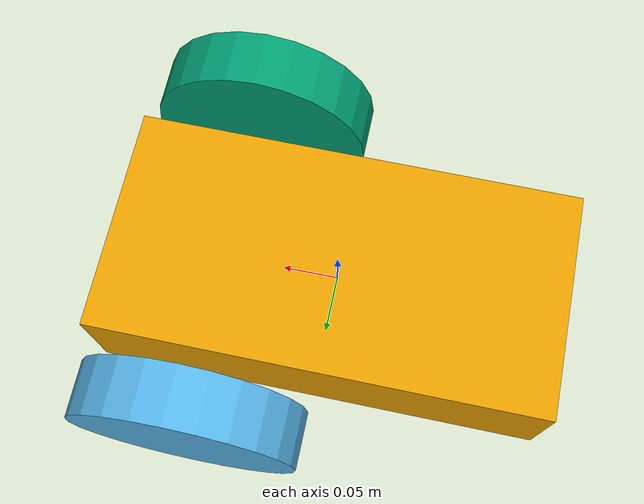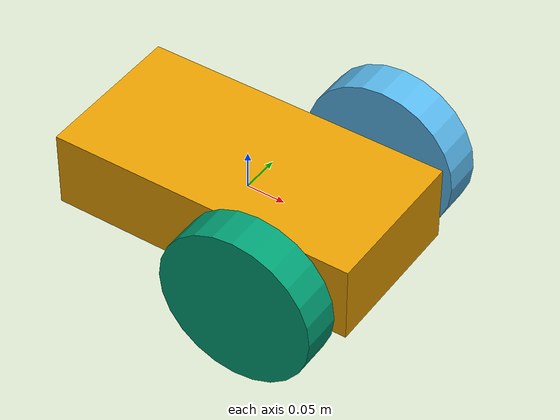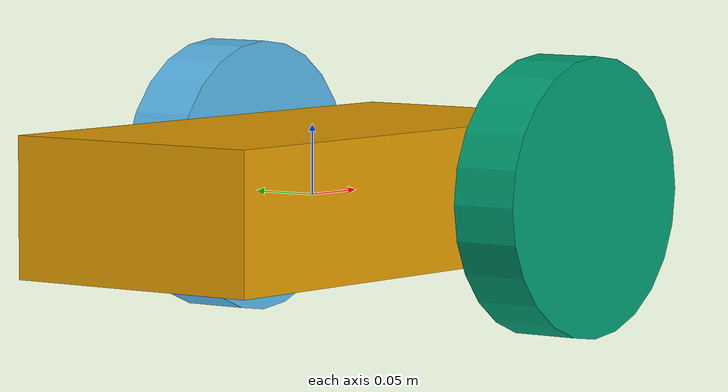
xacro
<?xml version="1.0"?>
<robot name="nas_robot" xmlns:xacro="http://www.ros.org/wiki/xacro">

<!-- ma len 1 link => jednu cast - valec-->
<link name="telo">
<visual name='telo_visual'>
<origin xyz="0 0 0" rpy="0 0 0"/>
<geometry>
<box size="0.4 0.2 0.1"/>
</geometry>
</visual>
<collision name='telo_collision'>
<geometry>
<box size="0.4 0.2 0.1"/>
</geometry>
</collision>
<inertial>
<mass value="10.0"/>
<origin xyz="0.0 0 0.1" rpy="0 0 0"/>
<inertia ixx="0.5" ixy="0" ixz="0" iyy="1.0" iyz="0" izz="0.1"/>
</inertial>
</link>

<xacro:macro name="koleso" params="prefix reflect">
<link name="${prefix}_koleso">
<visual name="${prefix}_koleso_visual">
<origin xyz="0 0 0" rpy="0 1.5707 1.5707"/>
<geometry>
<cylinder radius="0.1" length="0.05"/>
</geometry>
</visual>
<collision name="${prefix}_koleso_collision">
<origin xyz="0 0 0" rpy="0 1.5707 1.5707"/>
<geometry>
<cylinder radius="0.1" length="0.05"/>
</geometry>
</collision>
<inertial>
<origin xyz="0 0 0" rpy="0 1.5707 1.5707"/>
<mass value="5"/>
<cylinder_inertia m="5" r="0.1" h="0.05"/>
<inertia ixx="1.0" ixy="0.0" ixz="0.0" iyy="1.0" iyz="0.0" izz="1.0"/>
</inertial>
</link>

<joint type="continuous" name="${prefix}_koleso_zaves">
<origin xyz="0.1 ${reflect*0.15} 0" rpy="0 0 0"/>
<child link="${prefix}_koleso" />
<parent link="telo"/>
<axis xyz="0 1 0" rpy="0 0 0"/>
<limit effort="100" velocity="100"/>
<joint_properties damping="0.0" friction="0.0"/>
</joint>

<transmission name="${prefix}_koleso_trans">
<type>transmission_interface/SimpleTransmission</type>
<actuator name="${prefix}_koleso_motor">
<mechanicalReduction>1</mechanicalReduction>
</actuator>
<joint name="${prefix}_koleso_zaves">
<hardwareInterface>hardware_interface/VelocityJointInterface</hardwareInterface>
</joint>
</transmission>

</xacro:macro>

<xacro:koleso prefix="lave" reflect="1"/>
<xacro:koleso prefix="prave" reflect="-1"/>

<gazebo>
<plugin name="gazebo_ros_control" filename="libgazebo_ros_control.so">
<robotNamespace>/</robotNamespace>
</plugin>
</gazebo>

</robot>
